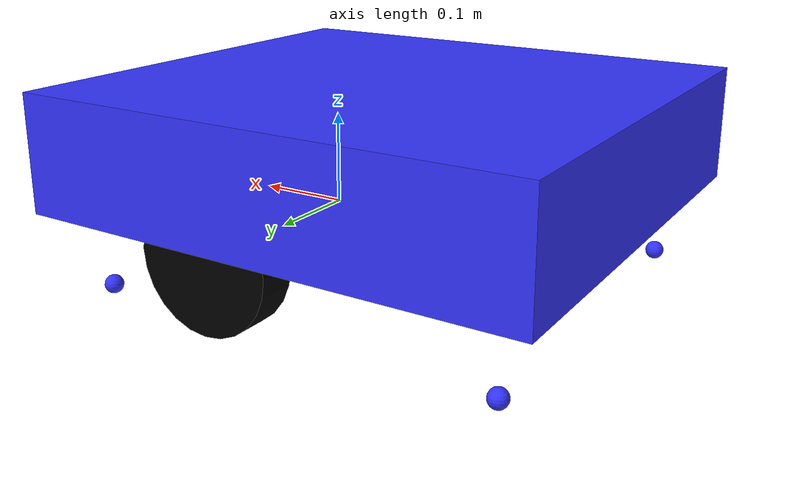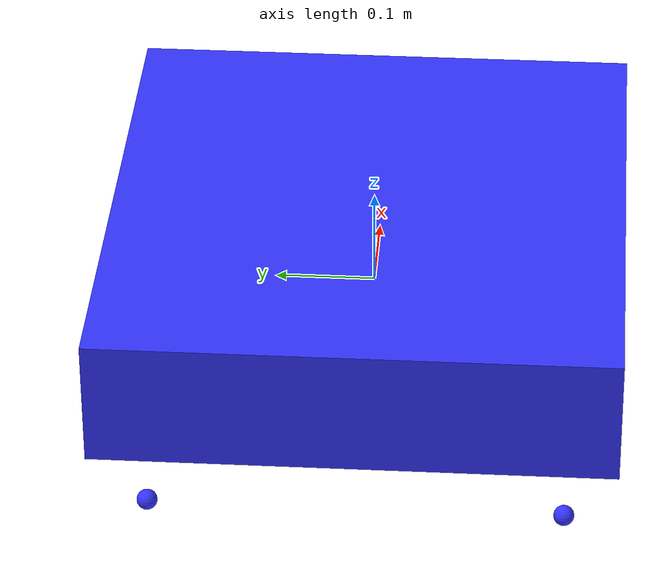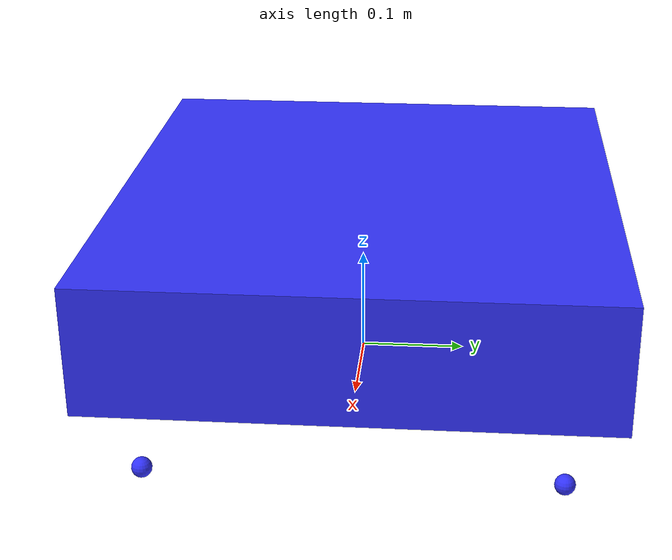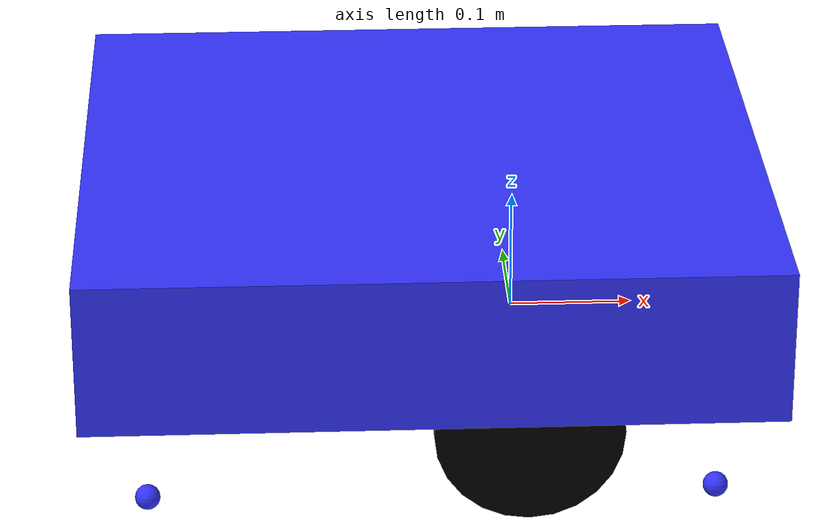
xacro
<?xml version="1.0"?>
<robot xmlns:xacro="http://www.ros.org/wiki/xacro">

    <xacro:include filename="inertial_macros.xacro" />

    <xacro:property name="chassis_length"   value="0.55" />
    <xacro:property name="chassis_width"    value="0.50" />
    <xacro:property name="chassis_height"   value="0.126" />
    <xacro:property name="chassis_mass"     value="1.5" />
    <xacro:property name="wheel_radius"     value="0.075" />
    <xacro:property name="wheel_thickness"  value="0.04" />
    <xacro:property name="wheel_mass"       value="0.5" />
    <xacro:property name="wheel_offset_x"   value="0.35" />
    <xacro:property name="wheel_offset_y"   value="0.205" />
    <xacro:property name="wheel_offset_z"   value="-0.02" />

    <xacro:property name="caster_wheel_radius"      value="0.01" />
    <xacro:property name="caster_wheel_mass"        value="0.01" />
    <!-- Clearance 2 mm agar 100% beban diam bertumpu pada roda penggerak -->
    <xacro:property name="caster_wheel_offset_z"    value="${wheel_offset_z - wheel_radius + caster_wheel_radius + 0.002}" />

    <material name="white">
        <color rgba="1 1 1 1" />
    </material>

    <material name="orange">
        <color rgba="1 0.3 0.1 1" />
    </material>

    <material name="blue">
        <color rgba="0.2 0.2 1 1" />
    </material>

    <material name="black">
        <color rgba="0 0 0 1" />
    </material>

    <material name="red">
        <color rgba="1 0 0 1" />
    </material>

    <!-- BASE LINK -->
    <link name="base_link" />

    <!-- BASE_FOOTPRINT LINK -->
    <joint name="base_footprint_joint" type="fixed">
        <parent link="base_link" />
        <child link="base_footprint" />
        <origin xyz="0 0 0" rpy="0 0 0" />
    </joint>

    <link name="base_footprint" />

    <!-- CHASSIS LINK -->
    <joint name="chassis_joint" type="fixed">
        <parent link="base_link" />
        <child link="chassis" />
        <origin xyz="${-wheel_offset_x} 0 ${-wheel_offset_z}" />
    </joint>

    <link name="chassis">
        <visual>
            <origin xyz="${chassis_length/2} 0 ${chassis_height/2}" />
            <geometry>
                <box size="${chassis_length} ${chassis_width} ${chassis_height}" />
            </geometry>
            <material name="blue" />
        </visual>
        <collision>
            <origin xyz="${chassis_length/2} 0 ${chassis_height/2}" />
            <geometry>
                <box size="${chassis_length} ${chassis_width} ${chassis_height}" />
            </geometry>
        </collision>
        <xacro:inertial_box mass="${chassis_mass}" x="${chassis_length}" y="${chassis_width}"
            z="${chassis_height}">
            <origin xyz="${chassis_length/2} 0 ${chassis_height/2}" rpy="0 0 0" />
        </xacro:inertial_box>
    </link>

    <gazebo reference="chassis">
        <material>Gazebo/Blue</material>
    </gazebo>

    <!-- LEFT WHEEL LINK -->
    <joint name="left_wheel_joint" type="continuous">
        <parent link="base_link" />
        <child link="left_wheel" />
        <origin xyz="0 ${wheel_offset_y} 0" rpy="-${pi/2} 0 0" />
        <axis xyz="0 0 1" />
    </joint>

    <link name="left_wheel">
        <visual>
            <geometry>
                <cylinder radius="${wheel_radius}" length="${wheel_thickness}" />
            </geometry>
            <material name="black" />
        </visual>
        <collision>
            <geometry>
                <cylinder radius="${wheel_radius}" length="${wheel_thickness}" />
            </geometry>
        </collision>
        <xacro:inertial_cylinder mass="${wheel_mass}" length="${wheel_thickness}"
            radius="${wheel_radius}">
            <origin xyz="0 0 0" rpy="0 0 0" />
        </xacro:inertial_cylinder>
    </link>

    <gazebo reference="left_wheel">
        <material>Gazebo/Black</material>
        <mu1 value="1.5" />
        <mu2 value="1.5" />
        <kp value="1000000.0" />
        <kd value="100.0" />
        <minDepth>0.001</minDepth>
    </gazebo>

    <!-- RIGHT WHEEL LINK -->
    <joint name="right_wheel_joint" type="continuous">
        <parent link="base_link" />
        <child link="right_wheel" />
        <origin xyz="0 ${-wheel_offset_y} 0" rpy="${pi/2} 0 0" />
        <axis xyz="0 0 -1" />
    </joint>

    <link name="right_wheel">
        <visual>
            <geometry>
                <cylinder radius="${wheel_radius}" length="${wheel_thickness}" />
            </geometry>
            <material name="black" />
        </visual>
        <collision>
            <geometry>
                <cylinder radius="${wheel_radius}" length="${wheel_thickness}" />
            </geometry>
        </collision>
        <xacro:inertial_cylinder mass="${wheel_mass}" length="${wheel_thickness}"
            radius="${wheel_radius}">
            <origin xyz="0 0 0" rpy="0 0 0" />
        </xacro:inertial_cylinder>
    </link>

    <gazebo reference="right_wheel">
        <material>Gazebo/Black</material>
        <mu1 value="1.5" />
        <mu2 value="1.5" />
        <kp value="1000000.0" />
        <kd value="100.0" />
        <minDepth>0.001</minDepth>
    </gazebo>

    <!-- CASTER WHEEL 1 (Belakang Kiri) -->
    <joint name="caster1_wheel_joint" type="fixed">
        <parent link="chassis" />
        <child link="caster1_wheel" />
        <origin xyz="0.05 0.2 ${caster_wheel_offset_z}" />
    </joint>
    <link name="caster1_wheel">
        <visual>
            <geometry>
                <sphere radius="${caster_wheel_radius}" />
            </geometry>
            <material name="blue" />
        </visual>
        <collision>
            <geometry>
                <sphere radius="${caster_wheel_radius}" />
            </geometry>
        </collision>
        <xacro:inertial_sphere mass="${caster_wheel_mass}" radius="${caster_wheel_radius}">
            <origin xyz="0 0 0" rpy="0 0 0" />
        </xacro:inertial_sphere>
    </link>
    <gazebo reference="caster1_wheel">
        <material>Gazebo/Blue</material>
        <mu1 value="0.0" />
        <mu2 value="0.0" />
    </gazebo>

    <!-- CASTER WHEEL 2 (Belakang Kanan) -->
    <joint name="caster2_wheel_joint" type="fixed">
        <parent link="chassis" />
        <child link="caster2_wheel" />
        <origin xyz="0.05 -0.2 ${caster_wheel_offset_z}" />
    </joint>
    <link name="caster2_wheel">
        <visual>
            <geometry>
                <sphere radius="${caster_wheel_radius}" />
            </geometry>
            <material name="blue" />
        </visual>
        <collision>
            <geometry>
                <sphere radius="${caster_wheel_radius}" />
            </geometry>
        </collision>
        <xacro:inertial_sphere mass="${caster_wheel_mass}" radius="${caster_wheel_radius}">
            <origin xyz="0 0 0" rpy="0 0 0" />
        </xacro:inertial_sphere>
    </link>
    <gazebo reference="caster2_wheel">
        <material>Gazebo/Blue</material>
        <mu1 value="0.0" />
        <mu2 value="0.0" />
    </gazebo>

    <!-- CASTER WHEEL 3 (Depan Kanan - masuk di bawah bodi 0.55 m) -->
    <joint name="caster3_wheel_joint" type="fixed">
        <parent link="chassis" />
        <child link="caster3_wheel" />
        <origin xyz="0.50 -0.2 ${caster_wheel_offset_z}" />
    </joint>
    <link name="caster3_wheel">
        <visual>
            <geometry>
                <sphere radius="${caster_wheel_radius}" />
            </geometry>
            <material name="blue" />
        </visual>
        <collision>
            <geometry>
                <sphere radius="${caster_wheel_radius}" />
            </geometry>
        </collision>
        <xacro:inertial_sphere mass="${caster_wheel_mass}" radius="${caster_wheel_radius}">
            <origin xyz="0 0 0" rpy="0 0 0" />
        </xacro:inertial_sphere>
    </link>
    <gazebo reference="caster3_wheel">
        <material>Gazebo/Blue</material>
        <mu1 value="0.0" />
        <mu2 value="0.0" />
    </gazebo>

    <!-- CASTER WHEEL 4 (Depan Kiri - masuk di bawah bodi 0.55 m) -->
    <joint name="caster4_wheel_joint" type="fixed">
        <parent link="chassis" />
        <child link="caster4_wheel" />
        <origin xyz="0.50 0.2 ${caster_wheel_offset_z}" />
    </joint>
    <link name="caster4_wheel">
        <visual>
            <geometry>
                <sphere radius="${caster_wheel_radius}" />
            </geometry>
            <material name="blue" />
        </visual>
        <collision>
            <geometry>
                <sphere radius="${caster_wheel_radius}" />
            </geometry>
        </collision>
        <xacro:inertial_sphere mass="${caster_wheel_mass}" radius="${caster_wheel_radius}">
            <origin xyz="0 0 0" rpy="0 0 0" />
        </xacro:inertial_sphere>
    </link>
    <gazebo reference="caster4_wheel">
        <material>Gazebo/Blue</material>
        <mu1 value="0.0" />
        <mu2 value="0.0" />
    </gazebo>

</robot>
